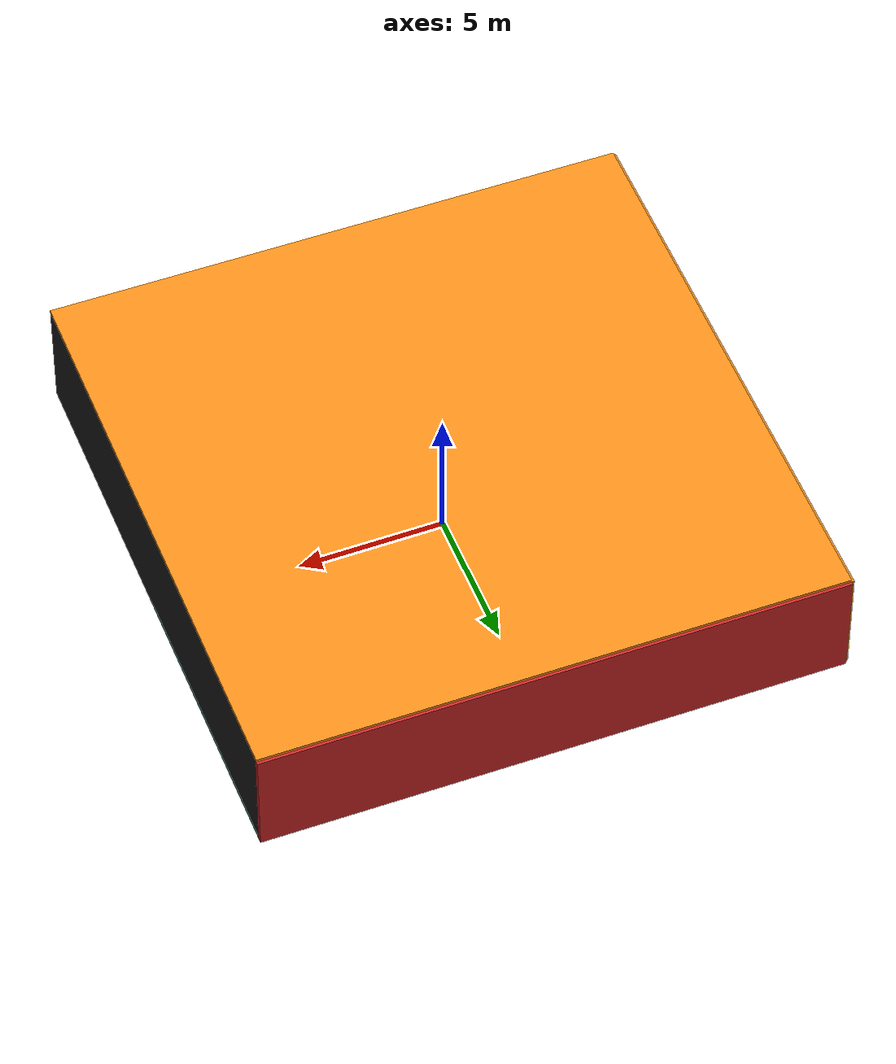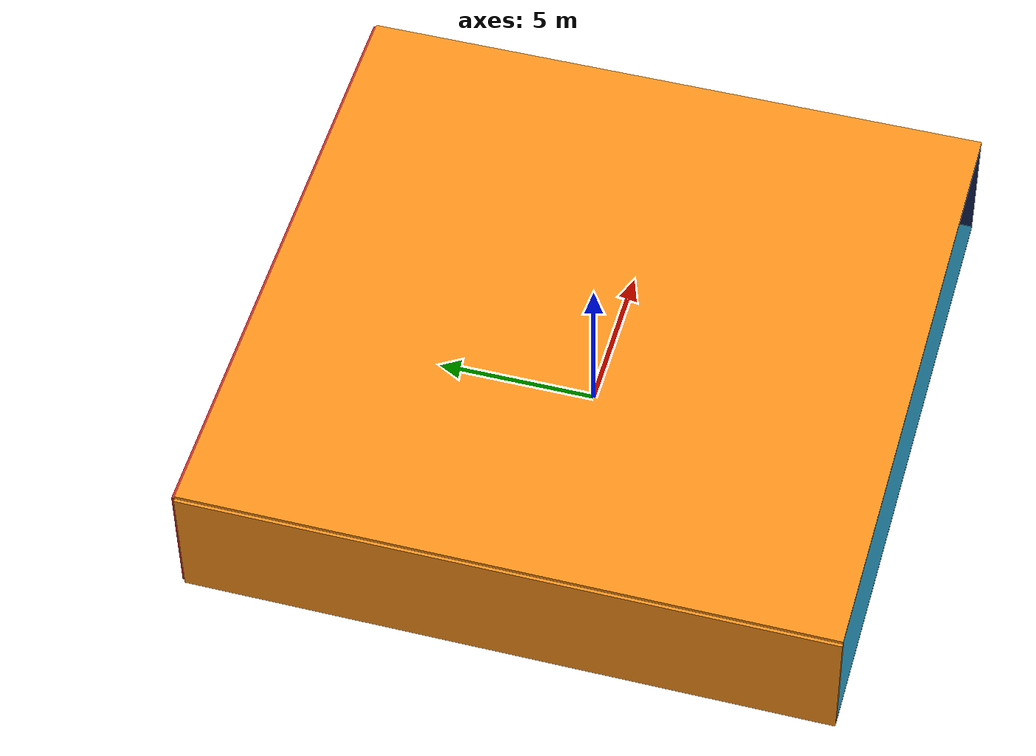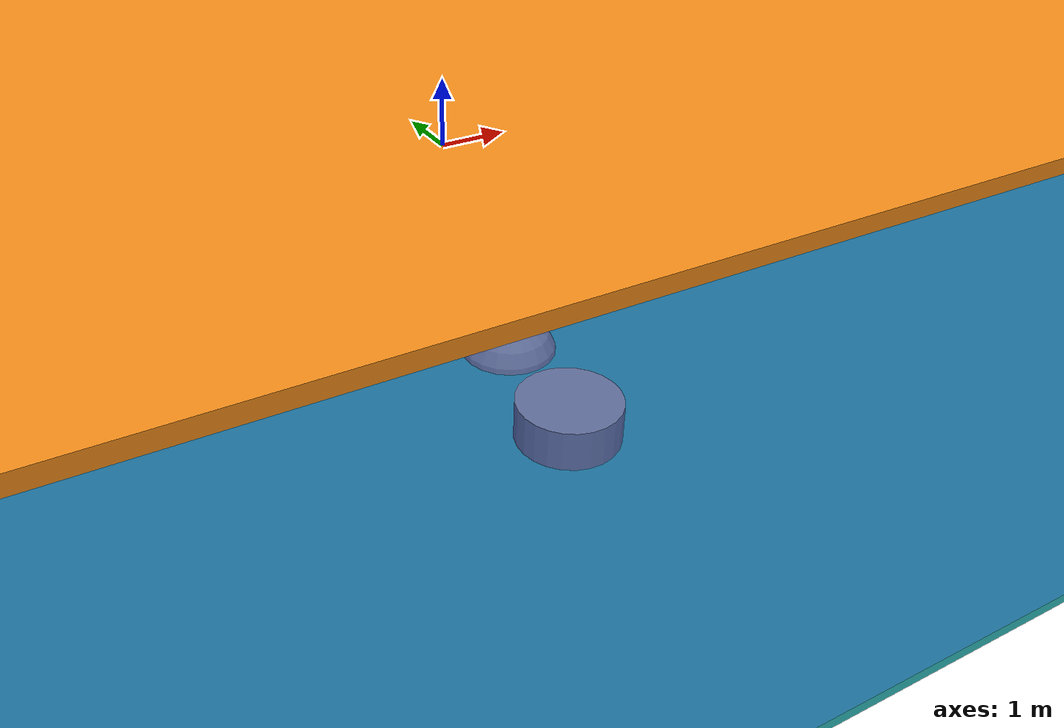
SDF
<sdf version="1.4">
 <world name="default">
  <physics type="ode">
   <max_step_size>0.001</max_step_size>
   <real_time_factor>1</real_time_factor>
   <real_time_update_rate>1000</real_time_update_rate>
   <gravity>0 0 -9.8</gravity>
  </physics>
  <scene><ambient>0.4 0.4 0.4 1</ambient><background>0.7 0.7 0.7 1</background><shadows>1</shadows></scene>
  <model name="Surrounding">
   <static>1</static>
   <link name="Ceiling">
    <collision name="Ceiling_Collision"><geometry><box><size>20 20 0.1</size></box></geometry></collision>
    <visual name="Ceiling_Visual">
     <geometry><box><size>20 20 0.1</size></box></geometry>
     <material>
      <script><uri>file://media/materials/scripts/gazebo.material</uri><name>Gazebo/Orange</name></script>
     </material>
    </visual>
    <pose>0 0 4.05 0 0 0</pose>
   </link>
   <link name="Wall_South">
    <collision name="Wall_South_Collision">
     <geometry><box><size>20 0 4</size></box></geometry>
     <pose>0 0 2 0 -0 0</pose>
    </collision>
    <visual name="Wall_South_Visual">
     <pose>0 0 2 0 -0 0</pose>
     <geometry><box><size>20 0 4</size></box></geometry>
     <material>
      <script><uri>file://media/materials/scripts/gazebo.material</uri><name>Gazebo/BlueTransparent</name></script>
     </material>
    </visual>
    <velocity_decay><linear>0</linear><angular>0</angular></velocity_decay>
    <pose>0 -10 0 0 -0 0</pose>
   </link>
   <link name="Wall_East">
    <collision name="Wall_21_Collision">
     <geometry><box><size>20 0 4</size></box></geometry>
     <pose>0 0 2 0 -0 0</pose>
    </collision>
    <visual name="Wall_21_Visual">
     <pose>0 0 2 0 -0 0</pose>
     <geometry><box><size>20 0 4</size></box></geometry>
     <material>
      <script><uri>file://media/materials/scripts/gazebo.material</uri><name>Gazebo/FlatBlack</name></script>
     </material>
    </visual>
    <velocity_decay><linear>0</linear><angular>0</angular></velocity_decay>
    <pose>10 0 0 0 -0 1.5708</pose>
   </link>
   <link name="Wall_North">
    <collision name="Wall_22_Collision">
     <geometry><box><size>20 0.2 4</size></box></geometry>
     <pose>0 0 2 0 -0 0</pose>
    </collision>
    <visual name="Wall_22_Visual">
     <pose>0 0 2 0 -0 0</pose>
     <geometry><box><size>20 0.2 4</size></box></geometry>
     <material>
      <script><uri>file://media/materials/scripts/gazebo.material</uri><name>Gazebo/RedBright</name></script>
     </material>
    </visual>
    <velocity_decay><linear>0</linear><angular>0</angular></velocity_decay>
    <pose>0 10 0 0 -0 0</pose>
   </link>
   <link name="Wall_West">
    <collision name="Wall_23_Collision">
     <geometry><box><size>20 0.2 4</size></box></geometry>
     <pose>0 0 2 0 -0 0</pose>
    </collision>
    <visual name="Wall_23_Visual">
     <pose>0 0 2 0 -0 0</pose>
     <geometry><box><size>20 0.2 4</size></box></geometry>
     <material>
      <script><uri>file://media/materials/scripts/gazebo.material</uri><name>Gazebo/Orange</name></script>
     </material>
    </visual>
    <velocity_decay><linear>0</linear><angular>0</angular></velocity_decay>
    <pose>-10 0 0 0 0 -1.5708</pose>
   </link>
   <link name="Ground_link">
    <collision name="collision">
     <pose>0 0 .05 0 -0 0</pose>
     <geometry><box><size>20 20 0.1</size></box></geometry>
    </collision>
    <visual name="visual">
     <pose>0 0 .05 0 -0 0</pose>
     <geometry><box><size>20 20 0.1</size></box></geometry>
     <material>
      <script><uri>file://media/materials/scripts/gazebo.material</uri><name>Gazebo/TurquoiseGlow</name></script>
     </material>
    </visual>
   </link>
   <static>1</static>
  </model>
  <spherical_coordinates>
   <surface_model>EARTH_WGS84</surface_model>
   <latitude_deg>0</latitude_deg>
   <longitude_deg>0</longitude_deg>
   <elevation>0</elevation>
   <heading_deg>0</heading_deg>
  </spherical_coordinates>
  <light name="lightball_0" type="diffuse">
   <diffuse>0.8 0.8 0.8 1</diffuse>
   <specular>0.2 0.2 0.2 1</specular>
   <attenuation>
    <range>100</range>
    <constant>0.7</constant>
    <linear>0.01</linear>
    <quadratic>0.001</quadratic>
   </attenuation>
   <direction>-0.5 0.1 -0.9</direction>
   <pose>7.67949333859 7.82488963294 2.59976060754 0 0 0</pose>
  </light>
  <light name="lightball_1" type="diffuse">
   <diffuse>0.8 0.8 0.8 1</diffuse>
   <specular>0.2 0.2 0.2 1</specular>
   <attenuation>
    <range>100</range>
    <constant>0.7</constant>
    <linear>0.01</linear>
    <quadratic>0.001</quadratic>
   </attenuation>
   <direction>-0.5 0.1 -0.9</direction>
   <pose>7.41484025372 2.12078519119 2.85116184559 0 0 0</pose>
  </light>
  <light name="lightball_2" type="diffuse">
   <diffuse>0.8 0.8 0.8 1</diffuse>
   <specular>0.2 0.2 0.2 1</specular>
   <attenuation>
    <range>100</range>
    <constant>0.7</constant>
    <linear>0.01</linear>
    <quadratic>0.001</quadratic>
   </attenuation>
   <direction>-0.5 0.1 -0.9</direction>
   <pose>5.98413936917 -8.49388800535 2.57592997141 0 0 0</pose>
  </light>
  <light name="lightball_3" type="diffuse">
   <diffuse>0.8 0.8 0.8 1</diffuse>
   <specular>0.2 0.2 0.2 1</specular>
   <attenuation>
    <range>100</range>
    <constant>0.7</constant>
    <linear>0.01</linear>
    <quadratic>0.001</quadratic>
   </attenuation>
   <direction>-0.5 0.1 -0.9</direction>
   <pose>4.47496555971 -3.58218449688 3.60970729138 0 0 0</pose>
  </light>
  <light name="lightball_4" type="diffuse">
   <diffuse>0.8 0.8 0.8 1</diffuse>
   <specular>0.2 0.2 0.2 1</specular>
   <attenuation>
    <range>100</range>
    <constant>0.7</constant>
    <linear>0.01</linear>
    <quadratic>0.001</quadratic>
   </attenuation>
   <direction>-0.5 0.1 -0.9</direction>
   <pose>4.0495243193 -0.300828702583 2.04675848114 0 0 0</pose>
  </light>
  <light name="lightball_5" type="diffuse">
   <diffuse>0.8 0.8 0.8 1</diffuse>
   <specular>0.2 0.2 0.2 1</specular>
   <attenuation>
    <range>100</range>
    <constant>0.7</constant>
    <linear>0.01</linear>
    <quadratic>0.001</quadratic>
   </attenuation>
   <direction>-0.5 0.1 -0.9</direction>
   <pose>-2.81049552446 2.7133529961 3.87008080802 0 0 0</pose>
  </light>
  <light name="lightball_6" type="diffuse">
   <diffuse>0.8 0.8 0.8 1</diffuse>
   <specular>0.2 0.2 0.2 1</specular>
   <attenuation>
    <range>100</range>
    <constant>0.7</constant>
    <linear>0.01</linear>
    <quadratic>0.001</quadratic>
   </attenuation>
   <direction>-0.5 0.1 -0.9</direction>
   <pose>-5.61128225838 -2.47056534594 2.86340333901 0 0 0</pose>
  </light>
  <light name="lightball_7" type="diffuse">
   <diffuse>0.8 0.8 0.8 1</diffuse>
   <specular>0.2 0.2 0.2 1</specular>
   <attenuation>
    <range>100</range>
    <constant>0.7</constant>
    <linear>0.01</linear>
    <quadratic>0.001</quadratic>
   </attenuation>
   <direction>-0.5 0.1 -0.9</direction>
   <pose>1.35069286212 -0.0606561402581 1.53996115263 0 0 0</pose>
  </light>
  <light name="lightball_8" type="diffuse">
   <diffuse>0.8 0.8 0.8 1</diffuse>
   <specular>0.2 0.2 0.2 1</specular>
   <attenuation>
    <range>100</range>
    <constant>0.7</constant>
    <linear>0.01</linear>
    <quadratic>0.001</quadratic>
   </attenuation>
   <direction>-0.5 0.1 -0.9</direction>
   <pose>2.72808419157 -7.89730147208 2.8537946394 0 0 0</pose>
  </light>
  <light name="lightball_9" type="diffuse">
   <diffuse>0.8 0.8 0.8 1</diffuse>
   <specular>0.2 0.2 0.2 1</specular>
   <attenuation>
    <range>100</range>
    <constant>0.7</constant>
    <linear>0.01</linear>
    <quadratic>0.001</quadratic>
   </attenuation>
   <direction>-0.5 0.1 -0.9</direction>
   <pose>-3.50761048891 -3.77125601967 2.76681003559 0 0 0</pose>
  </light>
  <light name="lightball_10" type="diffuse">
   <diffuse>0.8 0.8 0.8 1</diffuse>
   <specular>0.2 0.2 0.2 1</specular>
   <attenuation>
    <range>100</range>
    <constant>0.7</constant>
    <linear>0.01</linear>
    <quadratic>0.001</quadratic>
   </attenuation>
   <direction>-0.5 0.1 -0.9</direction>
   <pose>5.65712953373 -6.00478614641 1.74544539562 0 0 0</pose>
  </light>
  <light name="lightball_11" type="diffuse">
   <diffuse>0.8 0.8 0.8 1</diffuse>
   <specular>0.2 0.2 0.2 1</specular>
   <attenuation>
    <range>100</range>
    <constant>0.7</constant>
    <linear>0.01</linear>
    <quadratic>0.001</quadratic>
   </attenuation>
   <direction>-0.5 0.1 -0.9</direction>
   <pose>4.51180670323 -6.58401433607 3.23354396223 0 0 0</pose>
  </light>
  <include>
   <uri>model://construction_cone</uri>
   <pose>-6.88912079272 -3.75384938397 0 0 0 2.07629188829</pose>
  </include>
  <include>
   <uri>model://textured_shapes</uri>
   <pose>-1.88046617398 -5.08141223344 0 0 0 2.98057297463</pose>
  </include>
  <include>
   <uri>model://textured_shapes</uri>
   <pose>-2.19067536495 -1.50778624165 0 0 0 1.82505071443</pose>
  </include>
  <include>
   <uri>model://construction_cone</uri>
   <pose>-1.47242434573 5.65144851979 0 0 0 2.58578870766</pose>
  </include>
  <include>
   <uri>model://textured_shapes</uri>
   <pose>5.54829388792 0.441060660596 0 0 0 0.857725670497</pose>
  </include>
  <include><uri>model://table</uri><pose>6.5453261808 4.23563859227 0 0 0 0.845534866702</pose></include>
 </world>
</sdf>

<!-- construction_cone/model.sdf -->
<sdf version="1.5">
  <model name="Construction Cone">
    <link name="link">
      <collision name="collision">
        <geometry>
          <mesh>
            <scale>10 10 10</scale>
            <uri>file://isr-testbed/construction_cone/meshes/construction_cone.dae</uri>
          </mesh>
        </geometry>
      </collision>
      <visual name="visual">
        <geometry>
          <mesh>
            <scale>10 10 10</scale>
            <uri>file://isr-testbed/construction_cone/meshes/construction_cone.dae</uri>
          </mesh>
        </geometry>
      </visual>
    </link>
  </model>
</sdf>

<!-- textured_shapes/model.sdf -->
<sdf version="1.6">
  <model name="textured_shapes">
    <pose>0 0 0.5 0 0 0</pose>
    <link name="box">
      <pose>0 -1.5 0 0 0 0</pose>
      <collision name="collision">
        <geometry>
          <box>
            <size>1 1 1</size>
          </box>
        </geometry>
      </collision>
      <visual name="visual">
        <geometry>
          <box>
            <size>1 1 1</size>
          </box>
        </geometry>
        <material>
          <script>
            <uri>model://../model_source/models/textured_shapes/materials/scripts</uri>
            <uri>model://../model_source/models/textured_shapes/materials/textures</uri>
            <name>TexturedShape/Squares</name>
          </script>
        </material>
      </visual>
    </link>
    <link name="sphere">
      <collision name="collision">
        <geometry>
          <sphere>
            <radius>0.5</radius>
          </sphere>
        </geometry>
      </collision>
      <visual name="visual">
        <geometry>
          <sphere>
            <radius>0.5</radius>
          </sphere>
        </geometry>
        <material>
          <script>
            <uri>model://../model_source/models/textured_shapes/materials/scripts</uri>
            <uri>model://../model_source/models/textured_shapes/materials/textures</uri>
            <name>TexturedShape/Squares</name>
          </script>
        </material>
      </visual>
    </link>
    <link name="cylinder">
      <pose>0 1.5 0 0 0 0</pose>
      <collision name="collision">
        <geometry>
          <cylinder>
            <radius>0.5</radius>
            <length>1</length>
          </cylinder>
        </geometry>
      </collision>
      <visual name="visual">
        <geometry>
          <cylinder>
            <radius>0.5</radius>
            <length>1</length>
          </cylinder>
        </geometry>
        <material>
          <script>
            <uri>model://../model_source/models/textured_shapes/materials/scripts</uri>
            <uri>model://../model_source/models/textured_shapes/materials/textures</uri>
            <name>TexturedShape/Squares</name>
          </script>
        </material>
      </visual>
    </link>
  </model>
</sdf>

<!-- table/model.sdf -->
<sdf version="1.5">
  <model name="table">
    <static>true</static>
    <link name="link">
      <collision name="surface">
        <pose>0 0 1.0 0 0 0</pose>
        <geometry>
          <box>
            <size>1.5 0.8 0.03</size>
          </box>
        </geometry>
        <surface>
          <friction>
            <ode>
              <mu>0.6</mu>
              <mu2>0.6</mu2>
            </ode>
          </friction>
        </surface>
      </collision>
      <visual name="visual1">
        <pose>0 0 1.0 0 0 0</pose>
        <geometry>
          <box>
            <size>1.5 0.8 0.03</size>
          </box>
        </geometry>
        <material>
          <script>
            <uri>model://media/materials/scripts/gazebo.material</uri>
            <name>Gazebo/Wood</name>
          </script>
        </material>
      </visual>
      <collision name="front_left_leg">
        <pose>0.68 0.38 0.5 0 0 0</pose>
        <geometry>
          <cylinder>
            <radius>0.02</radius>
            <length>1.0</length>
          </cylinder>
        </geometry>
      </collision>
      <visual name="front_left_leg">
        <pose>0.68 0.38 0.5 0 0 0</pose>
        <geometry>
          <cylinder>
            <radius>0.02</radius>
            <length>1.0</length>
          </cylinder>
        </geometry>
        <material>
          <script>
            <uri>model://media/materials/scripts/gazebo.material</uri>
            <name>Gazebo/Grey</name>
          </script>
        </material>
      </visual>
      <collision name="front_right_leg">
        <pose>0.68 -0.38 0.5 0 0 0</pose>
        <geometry>
          <cylinder>
            <radius>0.02</radius>
            <length>1.0</length>
          </cylinder>
        </geometry>
      </collision>
      <visual name="front_right_leg">
        <pose>0.68 -0.38 0.5 0 0 0</pose>
        <geometry>
          <cylinder>
            <radius>0.02</radius>
            <length>1.0</length>
          </cylinder>
        </geometry>
        <material>
          <script>
            <uri>model://media/materials/scripts/gazebo.material</uri>
            <name>Gazebo/Grey</name>
          </script>
        </material>
      </visual>
      <collision name="back_right_leg">
        <pose>-0.68 -0.38 0.5 0 0 0</pose>
        <geometry>
          <cylinder>
            <radius>0.02</radius>
            <length>1.0</length>
          </cylinder>
        </geometry>
      </collision>
      <visual name="back_right_leg">
        <pose>-0.68 -0.38 0.5 0 0 0</pose>
        <geometry>
          <cylinder>
            <radius>0.02</radius>
            <length>1.0</length>
          </cylinder>
        </geometry>
        <material>
          <script>
            <uri>model://media/materials/scripts/gazebo.material</uri>
            <name>Gazebo/Grey</name>
          </script>
        </material>
      </visual>
      <collision name="back_left_leg">
        <pose>-0.68 0.38 0.5 0 0 0</pose>
        <geometry>
          <cylinder>
            <radius>0.02</radius>
            <length>1.0</length>
          </cylinder>
        </geometry>
      </collision>
      <visual name="back_left_leg">
        <pose>-0.68 0.38 0.5 0 0 0</pose>
        <geometry>
          <cylinder>
            <radius>0.02</radius>
            <length>1.0</length>
          </cylinder>
        </geometry>
        <material>
          <script>
            <uri>model://media/materials/scripts/gazebo.material</uri>
            <name>Gazebo/Grey</name>
          </script>
        </material>
      </visual>
    </link>
  </model>
</sdf>
